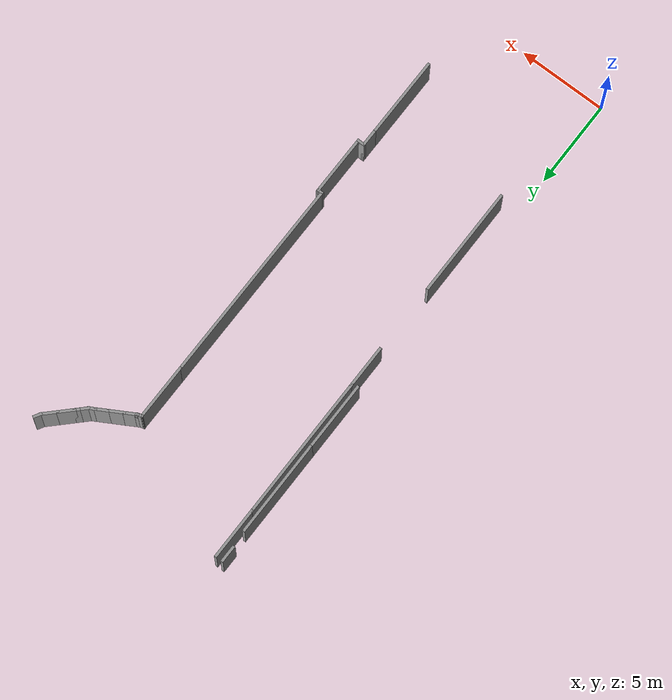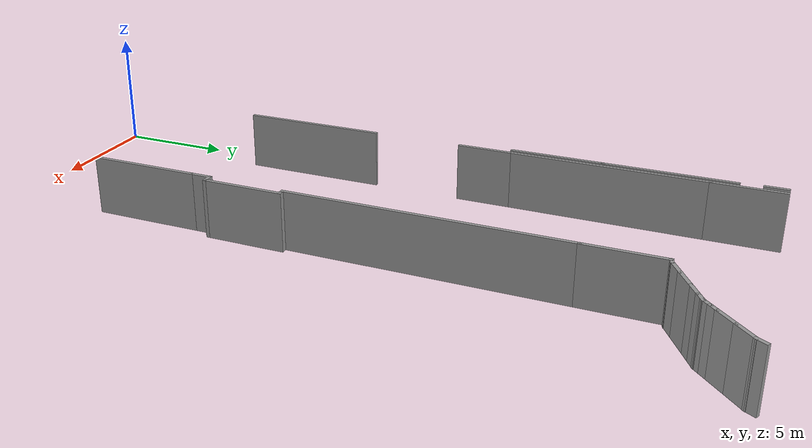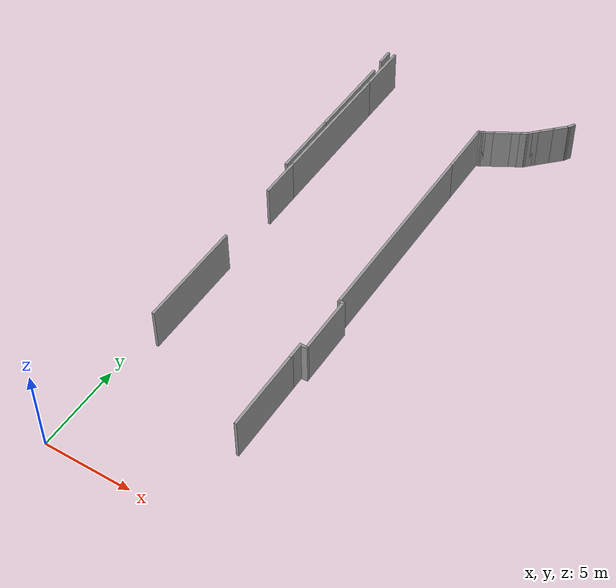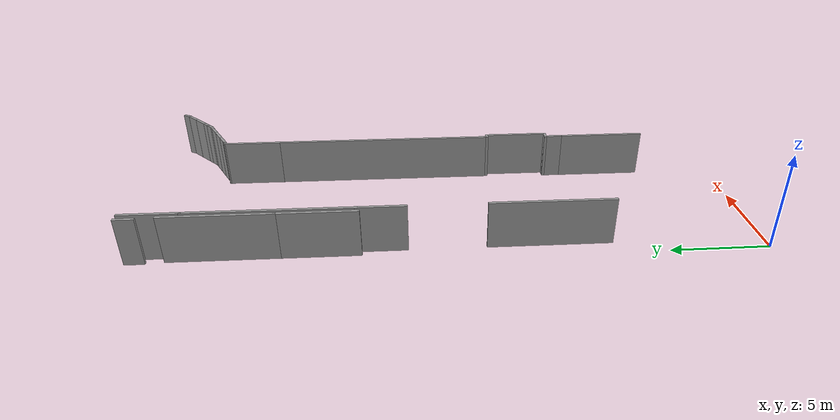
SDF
<sdf version="1.6">
 <model name="volen.world">
  <link name="Wall_101">
   <pose>12.349 30.9499 0 0 0 -2.0944</pose>
   <visual name="Wall_101_Visual">
    <pose>0 0 1.25 0 -0 0</pose>
    <geometry><box><size>0.5 0.15 2.5</size></box></geometry>
    <material>
     <script><uri>file://media/materials/scripts/gazebo.material</uri><name>Gazebo/Grey</name></script>
     <ambient>1 1 1 1</ambient>
     <diffuse>0.7 0.7 0.7 1</diffuse>
     <specular>0.01 0.01 0.01 1</specular>
     <emissive>0 0 0 1</emissive>
    </material>
   </visual>
   <collision name="Wall_101_Collision">
    <pose>0 0 1.25 0 -0 0</pose>
    <geometry><box><size>0.5 0.15 2.5</size></box></geometry>
    <surface>
     <friction>
      <ode><mu>1</mu><mu2>1</mu2><fdir1>0 0 0</fdir1><slip1>0</slip1><slip2>0</slip2></ode>
      <torsional>
       <coefficient>1</coefficient>
       <patch_radius>0</patch_radius>
       <surface_radius>0</surface_radius>
       <use_patch_radius>1</use_patch_radius>
       <ode><slip>0</slip></ode>
      </torsional>
     </friction>
     <bounce><restitution_coefficient>0</restitution_coefficient><threshold>1e+06</threshold></bounce>
     <contact>
      <collide_without_contact>0</collide_without_contact>
      <collide_without_contact_bitmask>1</collide_without_contact_bitmask>
      <collide_bitmask>1</collide_bitmask>
      <ode>
       <soft_cfm>0</soft_cfm>
       <soft_erp>0.2</soft_erp>
       <kp>1e+13</kp>
       <kd>1</kd>
       <max_vel>0.01</max_vel>
       <min_depth>0</min_depth>
      </ode>
      <bullet>
       <split_impulse>1</split_impulse>
       <split_impulse_penetration_threshold>-0.01</split_impulse_penetration_threshold>
       <soft_cfm>0</soft_cfm>
       <soft_erp>0.2</soft_erp>
       <kp>1e+13</kp>
       <kd>1</kd>
      </bullet>
     </contact>
    </surface>
   </collision>
  </link>
  <link name="Wall_102">
   <pose>11.961 30.4978 0 0 0 -2.35619</pose>
   <visual name="Wall_102_Visual">
    <pose>0 0 1.25 0 -0 0</pose>
    <geometry><box><size>1 0.15 2.5</size></box></geometry>
    <material>
     <script><uri>file://media/materials/scripts/gazebo.material</uri><name>Gazebo/Grey</name></script>
     <ambient>1 1 1 1</ambient>
     <diffuse>0.7 0.7 0.7 1</diffuse>
     <specular>0.01 0.01 0.01 1</specular>
     <emissive>0 0 0 1</emissive>
    </material>
   </visual>
   <collision name="Wall_102_Collision">
    <pose>0 0 1.25 0 -0 0</pose>
    <geometry><box><size>1 0.15 2.5</size></box></geometry>
    <surface>
     <friction>
      <ode><mu>1</mu><mu2>1</mu2><fdir1>0 0 0</fdir1><slip1>0</slip1><slip2>0</slip2></ode>
      <torsional>
       <coefficient>1</coefficient>
       <patch_radius>0</patch_radius>
       <surface_radius>0</surface_radius>
       <use_patch_radius>1</use_patch_radius>
       <ode><slip>0</slip></ode>
      </torsional>
     </friction>
     <bounce><restitution_coefficient>0</restitution_coefficient><threshold>1e+06</threshold></bounce>
     <contact>
      <collide_without_contact>0</collide_without_contact>
      <collide_without_contact_bitmask>1</collide_without_contact_bitmask>
      <collide_bitmask>1</collide_bitmask>
      <ode>
       <soft_cfm>0</soft_cfm>
       <soft_erp>0.2</soft_erp>
       <kp>1e+13</kp>
       <kd>1</kd>
       <max_vel>0.01</max_vel>
       <min_depth>0</min_depth>
      </ode>
      <bullet>
       <split_impulse>1</split_impulse>
       <split_impulse_penetration_threshold>-0.01</split_impulse_penetration_threshold>
       <soft_cfm>0</soft_cfm>
       <soft_erp>0.2</soft_erp>
       <kp>1e+13</kp>
       <kd>1</kd>
      </bullet>
     </contact>
    </surface>
   </collision>
  </link>
  <link name="Wall_103">
   <pose>11.36 29.8968 0 0 0 -2.35619</pose>
   <visual name="Wall_103_Visual">
    <pose>0 0 1.25 0 -0 0</pose>
    <geometry><box><size>1 0.15 2.5</size></box></geometry>
    <material>
     <script><uri>file://media/materials/scripts/gazebo.material</uri><name>Gazebo/Grey</name></script>
     <ambient>1 1 1 1</ambient>
     <diffuse>0.7 0.7 0.7 1</diffuse>
     <specular>0.01 0.01 0.01 1</specular>
     <emissive>0 0 0 1</emissive>
    </material>
   </visual>
   <collision name="Wall_103_Collision">
    <pose>0 0 1.25 0 -0 0</pose>
    <geometry><box><size>1 0.15 2.5</size></box></geometry>
    <surface>
     <friction>
      <ode><mu>1</mu><mu2>1</mu2><fdir1>0 0 0</fdir1><slip1>0</slip1><slip2>0</slip2></ode>
      <torsional>
       <coefficient>1</coefficient>
       <patch_radius>0</patch_radius>
       <surface_radius>0</surface_radius>
       <use_patch_radius>1</use_patch_radius>
       <ode><slip>0</slip></ode>
      </torsional>
     </friction>
     <bounce><restitution_coefficient>0</restitution_coefficient><threshold>1e+06</threshold></bounce>
     <contact>
      <collide_without_contact>0</collide_without_contact>
      <collide_without_contact_bitmask>1</collide_without_contact_bitmask>
      <collide_bitmask>1</collide_bitmask>
      <ode>
       <soft_cfm>0</soft_cfm>
       <soft_erp>0.2</soft_erp>
       <kp>1e+13</kp>
       <kd>1</kd>
       <max_vel>0.01</max_vel>
       <min_depth>0</min_depth>
      </ode>
      <bullet>
       <split_impulse>1</split_impulse>
       <split_impulse_penetration_threshold>-0.01</split_impulse_penetration_threshold>
       <soft_cfm>0</soft_cfm>
       <soft_erp>0.2</soft_erp>
       <kp>1e+13</kp>
       <kd>1</kd>
      </bullet>
     </contact>
    </surface>
   </collision>
  </link>
  <link name="Wall_104">
   <pose>10.9357 29.4725 0 0 0 -2.35619</pose>
   <visual name="Wall_104_Visual">
    <pose>0 0 1.25 0 -0 0</pose>
    <geometry><box><size>0.5 0.15 2.5</size></box></geometry>
    <material>
     <script><uri>file://media/materials/scripts/gazebo.material</uri><name>Gazebo/Grey</name></script>
     <ambient>1 1 1 1</ambient>
     <diffuse>0.7 0.7 0.7 1</diffuse>
     <specular>0.01 0.01 0.01 1</specular>
     <emissive>0 0 0 1</emissive>
    </material>
   </visual>
   <collision name="Wall_104_Collision">
    <pose>0 0 1.25 0 -0 0</pose>
    <geometry><box><size>0.5 0.15 2.5</size></box></geometry>
    <surface>
     <friction>
      <ode><mu>1</mu><mu2>1</mu2><fdir1>0 0 0</fdir1><slip1>0</slip1><slip2>0</slip2></ode>
      <torsional>
       <coefficient>1</coefficient>
       <patch_radius>0</patch_radius>
       <surface_radius>0</surface_radius>
       <use_patch_radius>1</use_patch_radius>
       <ode><slip>0</slip></ode>
      </torsional>
     </friction>
     <bounce><restitution_coefficient>0</restitution_coefficient><threshold>1e+06</threshold></bounce>
     <contact>
      <collide_without_contact>0</collide_without_contact>
      <collide_without_contact_bitmask>1</collide_without_contact_bitmask>
      <collide_bitmask>1</collide_bitmask>
      <ode>
       <soft_cfm>0</soft_cfm>
       <soft_erp>0.2</soft_erp>
       <kp>1e+13</kp>
       <kd>1</kd>
       <max_vel>0.01</max_vel>
       <min_depth>0</min_depth>
      </ode>
      <bullet>
       <split_impulse>1</split_impulse>
       <split_impulse_penetration_threshold>-0.01</split_impulse_penetration_threshold>
       <soft_cfm>0</soft_cfm>
       <soft_erp>0.2</soft_erp>
       <kp>1e+13</kp>
       <kd>1</kd>
      </bullet>
     </contact>
    </surface>
   </collision>
  </link>
  <link name="Wall_105">
   <pose>10.6882 29.225 0 0 0 -2.35619</pose>
   <visual name="Wall_105_Visual">
    <pose>0 0 1.25 0 -0 0</pose>
    <geometry><box><size>0.5 0.15 2.5</size></box></geometry>
    <material>
     <script><uri>file://media/materials/scripts/gazebo.material</uri><name>Gazebo/Grey</name></script>
     <ambient>1 1 1 1</ambient>
     <diffuse>0.7 0.7 0.7 1</diffuse>
     <specular>0.01 0.01 0.01 1</specular>
     <emissive>0 0 0 1</emissive>
    </material>
   </visual>
   <collision name="Wall_105_Collision">
    <pose>0 0 1.25 0 -0 0</pose>
    <geometry><box><size>0.5 0.15 2.5</size></box></geometry>
    <surface>
     <friction>
      <ode><mu>1</mu><mu2>1</mu2><fdir1>0 0 0</fdir1><slip1>0</slip1><slip2>0</slip2></ode>
      <torsional>
       <coefficient>1</coefficient>
       <patch_radius>0</patch_radius>
       <surface_radius>0</surface_radius>
       <use_patch_radius>1</use_patch_radius>
       <ode><slip>0</slip></ode>
      </torsional>
     </friction>
     <bounce><restitution_coefficient>0</restitution_coefficient><threshold>1e+06</threshold></bounce>
     <contact>
      <collide_without_contact>0</collide_without_contact>
      <collide_without_contact_bitmask>1</collide_without_contact_bitmask>
      <collide_bitmask>1</collide_bitmask>
      <ode>
       <soft_cfm>0</soft_cfm>
       <soft_erp>0.2</soft_erp>
       <kp>1e+13</kp>
       <kd>1</kd>
       <max_vel>0.01</max_vel>
       <min_depth>0</min_depth>
      </ode>
      <bullet>
       <split_impulse>1</split_impulse>
       <split_impulse_penetration_threshold>-0.01</split_impulse_penetration_threshold>
       <soft_cfm>0</soft_cfm>
       <soft_erp>0.2</soft_erp>
       <kp>1e+13</kp>
       <kd>1</kd>
      </bullet>
     </contact>
    </surface>
   </collision>
  </link>
  <link name="Wall_106">
   <pose>10.4129 29.0138 0 0 0 -2.61799</pose>
   <visual name="Wall_106_Visual">
    <pose>0 0 1.25 0 -0 0</pose>
    <geometry><box><size>0.5 0.15 2.5</size></box></geometry>
    <material>
     <script><uri>file://media/materials/scripts/gazebo.material</uri><name>Gazebo/Grey</name></script>
     <ambient>1 1 1 1</ambient>
     <diffuse>0.7 0.7 0.7 1</diffuse>
     <specular>0.01 0.01 0.01 1</specular>
     <emissive>0 0 0 1</emissive>
    </material>
   </visual>
   <collision name="Wall_106_Collision">
    <pose>0 0 1.25 0 -0 0</pose>
    <geometry><box><size>0.5 0.15 2.5</size></box></geometry>
    <surface>
     <friction>
      <ode><mu>1</mu><mu2>1</mu2><fdir1>0 0 0</fdir1><slip1>0</slip1><slip2>0</slip2></ode>
      <torsional>
       <coefficient>1</coefficient>
       <patch_radius>0</patch_radius>
       <surface_radius>0</surface_radius>
       <use_patch_radius>1</use_patch_radius>
       <ode><slip>0</slip></ode>
      </torsional>
     </friction>
     <bounce><restitution_coefficient>0</restitution_coefficient><threshold>1e+06</threshold></bounce>
     <contact>
      <collide_without_contact>0</collide_without_contact>
      <collide_without_contact_bitmask>1</collide_without_contact_bitmask>
      <collide_bitmask>1</collide_bitmask>
      <ode>
       <soft_cfm>0</soft_cfm>
       <soft_erp>0.2</soft_erp>
       <kp>1e+13</kp>
       <kd>1</kd>
       <max_vel>0.01</max_vel>
       <min_depth>0</min_depth>
      </ode>
      <bullet>
       <split_impulse>1</split_impulse>
       <split_impulse_penetration_threshold>-0.01</split_impulse_penetration_threshold>
       <soft_cfm>0</soft_cfm>
       <soft_erp>0.2</soft_erp>
       <kp>1e+13</kp>
       <kd>1</kd>
      </bullet>
     </contact>
    </surface>
   </collision>
  </link>
  <link name="Wall_108">
   <pose>10.0015 28.7763 0 0 0 -2.61799</pose>
   <visual name="Wall_108_Visual">
    <pose>0 0 1.25 0 -0 0</pose>
    <geometry><box><size>0.75 0.15 2.5</size></box></geometry>
    <material>
     <script><uri>file://media/materials/scripts/gazebo.material</uri><name>Gazebo/Grey</name></script>
     <ambient>1 1 1 1</ambient>
     <diffuse>0.7 0.7 0.7 1</diffuse>
     <specular>0.01 0.01 0.01 1</specular>
     <emissive>0 0 0 1</emissive>
    </material>
   </visual>
   <collision name="Wall_108_Collision">
    <pose>0 0 1.25 0 -0 0</pose>
    <geometry><box><size>0.75 0.15 2.5</size></box></geometry>
    <surface>
     <friction>
      <ode><mu>1</mu><mu2>1</mu2><fdir1>0 0 0</fdir1><slip1>0</slip1><slip2>0</slip2></ode>
      <torsional>
       <coefficient>1</coefficient>
       <patch_radius>0</patch_radius>
       <surface_radius>0</surface_radius>
       <use_patch_radius>1</use_patch_radius>
       <ode><slip>0</slip></ode>
      </torsional>
     </friction>
     <bounce><restitution_coefficient>0</restitution_coefficient><threshold>1e+06</threshold></bounce>
     <contact>
      <collide_without_contact>0</collide_without_contact>
      <collide_without_contact_bitmask>1</collide_without_contact_bitmask>
      <collide_bitmask>1</collide_bitmask>
      <ode>
       <soft_cfm>0</soft_cfm>
       <soft_erp>0.2</soft_erp>
       <kp>1e+13</kp>
       <kd>1</kd>
       <max_vel>0.01</max_vel>
       <min_depth>0</min_depth>
      </ode>
      <bullet>
       <split_impulse>1</split_impulse>
       <split_impulse_penetration_threshold>-0.01</split_impulse_penetration_threshold>
       <soft_cfm>0</soft_cfm>
       <soft_erp>0.2</soft_erp>
       <kp>1e+13</kp>
       <kd>1</kd>
      </bullet>
     </contact>
    </surface>
   </collision>
  </link>
  <link name="Wall_109">
   <pose>9.37367 28.4138 0 0 0 -2.61799</pose>
   <visual name="Wall_109_Visual">
    <pose>0 0 1.25 0 -0 0</pose>
    <geometry><box><size>1 0.15 2.5</size></box></geometry>
    <material>
     <script><uri>file://media/materials/scripts/gazebo.material</uri><name>Gazebo/Grey</name></script>
     <ambient>1 1 1 1</ambient>
     <diffuse>0.7 0.7 0.7 1</diffuse>
     <specular>0.01 0.01 0.01 1</specular>
     <emissive>0 0 0 1</emissive>
    </material>
   </visual>
   <collision name="Wall_109_Collision">
    <pose>0 0 1.25 0 -0 0</pose>
    <geometry><box><size>1 0.15 2.5</size></box></geometry>
    <surface>
     <friction>
      <ode><mu>1</mu><mu2>1</mu2><fdir1>0 0 0</fdir1><slip1>0</slip1><slip2>0</slip2></ode>
      <torsional>
       <coefficient>1</coefficient>
       <patch_radius>0</patch_radius>
       <surface_radius>0</surface_radius>
       <use_patch_radius>1</use_patch_radius>
       <ode><slip>0</slip></ode>
      </torsional>
     </friction>
     <bounce><restitution_coefficient>0</restitution_coefficient><threshold>1e+06</threshold></bounce>
     <contact>
      <collide_without_contact>0</collide_without_contact>
      <collide_without_contact_bitmask>1</collide_without_contact_bitmask>
      <collide_bitmask>1</collide_bitmask>
      <ode>
       <soft_cfm>0</soft_cfm>
       <soft_erp>0.2</soft_erp>
       <kp>1e+13</kp>
       <kd>1</kd>
       <max_vel>0.01</max_vel>
       <min_depth>0</min_depth>
      </ode>
      <bullet>
       <split_impulse>1</split_impulse>
       <split_impulse_penetration_threshold>-0.01</split_impulse_penetration_threshold>
       <soft_cfm>0</soft_cfm>
       <soft_erp>0.2</soft_erp>
       <kp>1e+13</kp>
       <kd>1</kd>
      </bullet>
     </contact>
    </surface>
   </collision>
  </link>
  <link name="Wall_110">
   <pose>8.7458 28.0513 0 0 0 -2.61799</pose>
   <visual name="Wall_110_Visual">
    <pose>0 0 1.25 0 -0 0</pose>
    <geometry><box><size>0.75 0.15 2.5</size></box></geometry>
    <material>
     <script><uri>file://media/materials/scripts/gazebo.material</uri><name>Gazebo/Grey</name></script>
     <ambient>1 1 1 1</ambient>
     <diffuse>0.7 0.7 0.7 1</diffuse>
     <specular>0.01 0.01 0.01 1</specular>
     <emissive>0 0 0 1</emissive>
    </material>
   </visual>
   <collision name="Wall_110_Collision">
    <pose>0 0 1.25 0 -0 0</pose>
    <geometry><box><size>0.75 0.15 2.5</size></box></geometry>
    <surface>
     <friction>
      <ode><mu>1</mu><mu2>1</mu2><fdir1>0 0 0</fdir1><slip1>0</slip1><slip2>0</slip2></ode>
      <torsional>
       <coefficient>1</coefficient>
       <patch_radius>0</patch_radius>
       <surface_radius>0</surface_radius>
       <use_patch_radius>1</use_patch_radius>
       <ode><slip>0</slip></ode>
      </torsional>
     </friction>
     <bounce><restitution_coefficient>0</restitution_coefficient><threshold>1e+06</threshold></bounce>
     <contact>
      <collide_without_contact>0</collide_without_contact>
      <collide_without_contact_bitmask>1</collide_without_contact_bitmask>
      <collide_bitmask>1</collide_bitmask>
      <ode>
       <soft_cfm>0</soft_cfm>
       <soft_erp>0.2</soft_erp>
       <kp>1e+13</kp>
       <kd>1</kd>
       <max_vel>0.01</max_vel>
       <min_depth>0</min_depth>
      </ode>
      <bullet>
       <split_impulse>1</split_impulse>
       <split_impulse_penetration_threshold>-0.01</split_impulse_penetration_threshold>
       <soft_cfm>0</soft_cfm>
       <soft_erp>0.2</soft_erp>
       <kp>1e+13</kp>
       <kd>1</kd>
      </bullet>
     </contact>
    </surface>
   </collision>
  </link>
  <link name="Wall_111">
   <pose>8.44269 27.8763 0 0 0 -2.61799</pose>
   <visual name="Wall_111_Visual">
    <pose>0 0 1.25 0 -0 0</pose>
    <geometry><box><size>0.25 0.15 2.5</size></box></geometry>
    <material>
     <script><uri>file://media/materials/scripts/gazebo.material</uri><name>Gazebo/Grey</name></script>
     <ambient>1 1 1 1</ambient>
     <diffuse>0.7 0.7 0.7 1</diffuse>
     <specular>0.01 0.01 0.01 1</specular>
     <emissive>0 0 0 1</emissive>
    </material>
   </visual>
   <collision name="Wall_111_Collision">
    <pose>0 0 1.25 0 -0 0</pose>
    <geometry><box><size>0.25 0.15 2.5</size></box></geometry>
    <surface>
     <friction>
      <ode><mu>1</mu><mu2>1</mu2><fdir1>0 0 0</fdir1><slip1>0</slip1><slip2>0</slip2></ode>
      <torsional>
       <coefficient>1</coefficient>
       <patch_radius>0</patch_radius>
       <surface_radius>0</surface_radius>
       <use_patch_radius>1</use_patch_radius>
       <ode><slip>0</slip></ode>
      </torsional>
     </friction>
     <bounce><restitution_coefficient>0</restitution_coefficient><threshold>1e+06</threshold></bounce>
     <contact>
      <collide_without_contact>0</collide_without_contact>
      <collide_without_contact_bitmask>1</collide_without_contact_bitmask>
      <collide_bitmask>1</collide_bitmask>
      <ode>
       <soft_cfm>0</soft_cfm>
       <soft_erp>0.2</soft_erp>
       <kp>1e+13</kp>
       <kd>1</kd>
       <max_vel>0.01</max_vel>
       <min_depth>0</min_depth>
      </ode>
      <bullet>
       <split_impulse>1</split_impulse>
       <split_impulse_penetration_threshold>-0.01</split_impulse_penetration_threshold>
       <soft_cfm>0</soft_cfm>
       <soft_erp>0.2</soft_erp>
       <kp>1e+13</kp>
       <kd>1</kd>
      </bullet>
     </contact>
    </surface>
   </collision>
  </link>
  <link name="Wall_112">
   <pose>8.3511 27.8383 0 0 0 -2.87979</pose>
   <visual name="Wall_112_Visual">
    <pose>0 0 1.25 0 -0 0</pose>
    <geometry><box><size>0.25 0.15 2.5</size></box></geometry>
    <material>
     <script><uri>file://media/materials/scripts/gazebo.material</uri><name>Gazebo/Grey</name></script>
     <ambient>1 1 1 1</ambient>
     <diffuse>0.7 0.7 0.7 1</diffuse>
     <specular>0.01 0.01 0.01 1</specular>
     <emissive>0 0 0 1</emissive>
    </material>
   </visual>
   <collision name="Wall_112_Collision">
    <pose>0 0 1.25 0 -0 0</pose>
    <geometry><box><size>0.25 0.15 2.5</size></box></geometry>
    <surface>
     <friction>
      <ode><mu>1</mu><mu2>1</mu2><fdir1>0 0 0</fdir1><slip1>0</slip1><slip2>0</slip2></ode>
      <torsional>
       <coefficient>1</coefficient>
       <patch_radius>0</patch_radius>
       <surface_radius>0</surface_radius>
       <use_patch_radius>1</use_patch_radius>
       <ode><slip>0</slip></ode>
      </torsional>
     </friction>
     <bounce><restitution_coefficient>0</restitution_coefficient><threshold>1e+06</threshold></bounce>
     <contact>
      <collide_without_contact>0</collide_without_contact>
      <collide_without_contact_bitmask>1</collide_without_contact_bitmask>
      <collide_bitmask>1</collide_bitmask>
      <ode>
       <soft_cfm>0</soft_cfm>
       <soft_erp>0.2</soft_erp>
       <kp>1e+13</kp>
       <kd>1</kd>
       <max_vel>0.01</max_vel>
       <min_depth>0</min_depth>
      </ode>
      <bullet>
       <split_impulse>1</split_impulse>
       <split_impulse_penetration_threshold>-0.01</split_impulse_penetration_threshold>
       <soft_cfm>0</soft_cfm>
       <soft_erp>0.2</soft_erp>
       <kp>1e+13</kp>
       <kd>1</kd>
      </bullet>
     </contact>
    </surface>
   </collision>
  </link>
  <link name="Wall_113">
   <pose>8.2545 27.8124 0 0 0 -2.87979</pose>
   <visual name="Wall_113_Visual">
    <pose>0 0 1.25 0 -0 0</pose>
    <geometry><box><size>0.25 0.15 2.5</size></box></geometry>
    <material>
     <script><uri>file://media/materials/scripts/gazebo.material</uri><name>Gazebo/Grey</name></script>
     <ambient>1 1 1 1</ambient>
     <diffuse>0.7 0.7 0.7 1</diffuse>
     <specular>0.01 0.01 0.01 1</specular>
     <emissive>0 0 0 1</emissive>
    </material>
   </visual>
   <collision name="Wall_113_Collision">
    <pose>0 0 1.25 0 -0 0</pose>
    <geometry><box><size>0.25 0.15 2.5</size></box></geometry>
    <surface>
     <friction>
      <ode><mu>1</mu><mu2>1</mu2><fdir1>0 0 0</fdir1><slip1>0</slip1><slip2>0</slip2></ode>
      <torsional>
       <coefficient>1</coefficient>
       <patch_radius>0</patch_radius>
       <surface_radius>0</surface_radius>
       <use_patch_radius>1</use_patch_radius>
       <ode><slip>0</slip></ode>
      </torsional>
     </friction>
     <bounce><restitution_coefficient>0</restitution_coefficient><threshold>1e+06</threshold></bounce>
     <contact>
      <collide_without_contact>0</collide_without_contact>
      <collide_without_contact_bitmask>1</collide_without_contact_bitmask>
      <collide_bitmask>1</collide_bitmask>
      <ode>
       <soft_cfm>0</soft_cfm>
       <soft_erp>0.2</soft_erp>
       <kp>1e+13</kp>
       <kd>1</kd>
       <max_vel>0.01</max_vel>
       <min_depth>0</min_depth>
      </ode>
      <bullet>
       <split_impulse>1</split_impulse>
       <split_impulse_penetration_threshold>-0.01</split_impulse_penetration_threshold>
       <soft_cfm>0</soft_cfm>
       <soft_erp>0.2</soft_erp>
       <kp>1e+13</kp>
       <kd>1</kd>
      </bullet>
     </contact>
    </surface>
   </collision>
  </link>
  <link name="Wall_114">
   <pose>8.20621 26.2495 0 0 0 -1.5708</pose>
   <visual name="Wall_114_Visual">
    <pose>0 0 1.25 0 -0 0</pose>
    <geometry><box><size>3.25 0.15 2.5</size></box></geometry>
    <material>
     <script><uri>file://media/materials/scripts/gazebo.material</uri><name>Gazebo/Grey</name></script>
     <ambient>1 1 1 1</ambient>
     <diffuse>0.7 0.7 0.7 1</diffuse>
     <specular>0.01 0.01 0.01 1</specular>
     <emissive>0 0 0 1</emissive>
    </material>
   </visual>
   <collision name="Wall_114_Collision">
    <pose>0 0 1.25 0 -0 0</pose>
    <geometry><box><size>3.25 0.15 2.5</size></box></geometry>
    <surface>
     <friction>
      <ode><mu>1</mu><mu2>1</mu2><fdir1>0 0 0</fdir1><slip1>0</slip1><slip2>0</slip2></ode>
      <torsional>
       <coefficient>1</coefficient>
       <patch_radius>0</patch_radius>
       <surface_radius>0</surface_radius>
       <use_patch_radius>1</use_patch_radius>
       <ode><slip>0</slip></ode>
      </torsional>
     </friction>
     <bounce><restitution_coefficient>0</restitution_coefficient><threshold>1e+06</threshold></bounce>
     <contact>
      <collide_without_contact>0</collide_without_contact>
      <collide_without_contact_bitmask>1</collide_without_contact_bitmask>
      <collide_bitmask>1</collide_bitmask>
      <ode>
       <soft_cfm>0</soft_cfm>
       <soft_erp>0.2</soft_erp>
       <kp>1e+13</kp>
       <kd>1</kd>
       <max_vel>0.01</max_vel>
       <min_depth>0</min_depth>
      </ode>
      <bullet>
       <split_impulse>1</split_impulse>
       <split_impulse_penetration_threshold>-0.01</split_impulse_penetration_threshold>
       <soft_cfm>0</soft_cfm>
       <soft_erp>0.2</soft_erp>
       <kp>1e+13</kp>
       <kd>1</kd>
      </bullet>
     </contact>
    </surface>
   </collision>
  </link>
  <link name="Wall_116">
   <pose>8.20622 18.8994 0 0 0 -1.57079</pose>
   <visual name="Wall_116_Visual">
    <pose>0 0 1.25 0 -0 0</pose>
    <geometry><box><size>11.75 0.15 2.5</size></box></geometry>
    <material>
     <script><uri>file://media/materials/scripts/gazebo.material</uri><name>Gazebo/Grey</name></script>
     <ambient>1 1 1 1</ambient>
     <diffuse>0.7 0.7 0.7 1</diffuse>
     <specular>0.01 0.01 0.01 1</specular>
     <emissive>0 0 0 1</emissive>
    </material>
   </visual>
   <collision name="Wall_116_Collision">
    <pose>0 0 1.25 0 -0 0</pose>
    <geometry><box><size>11.75 0.15 2.5</size></box></geometry>
    <surface>
     <friction>
      <ode><mu>1</mu><mu2>1</mu2><fdir1>0 0 0</fdir1><slip1>0</slip1><slip2>0</slip2></ode>
      <torsional>
       <coefficient>1</coefficient>
       <patch_radius>0</patch_radius>
       <surface_radius>0</surface_radius>
       <use_patch_radius>1</use_patch_radius>
       <ode><slip>0</slip></ode>
      </torsional>
     </friction>
     <bounce><restitution_coefficient>0</restitution_coefficient><threshold>1e+06</threshold></bounce>
     <contact>
      <collide_without_contact>0</collide_without_contact>
      <collide_without_contact_bitmask>1</collide_without_contact_bitmask>
      <collide_bitmask>1</collide_bitmask>
      <ode>
       <soft_cfm>0</soft_cfm>
       <soft_erp>0.2</soft_erp>
       <kp>1e+13</kp>
       <kd>1</kd>
       <max_vel>0.01</max_vel>
       <min_depth>0</min_depth>
      </ode>
      <bullet>
       <split_impulse>1</split_impulse>
       <split_impulse_penetration_threshold>-0.01</split_impulse_penetration_threshold>
       <soft_cfm>0</soft_cfm>
       <soft_erp>0.2</soft_erp>
       <kp>1e+13</kp>
       <kd>1</kd>
      </bullet>
     </contact>
    </surface>
   </collision>
  </link>
  <link name="Wall_118">
   <pose>8.32123 13.0994 0 0 -0 0</pose>
   <visual name="Wall_118_Visual">
    <pose>0 0 1.25 0 -0 0</pose>
    <geometry><box><size>0.38 0.15 2.5</size></box></geometry>
    <material>
     <script><uri>file://media/materials/scripts/gazebo.material</uri><name>Gazebo/Grey</name></script>
     <ambient>1 1 1 1</ambient>
     <diffuse>0.7 0.7 0.7 1</diffuse>
     <specular>0.01 0.01 0.01 1</specular>
     <emissive>0 0 0 1</emissive>
    </material>
   </visual>
   <collision name="Wall_118_Collision">
    <pose>0 0 1.25 0 -0 0</pose>
    <geometry><box><size>0.38 0.15 2.5</size></box></geometry>
    <surface>
     <friction>
      <ode><mu>1</mu><mu2>1</mu2><fdir1>0 0 0</fdir1><slip1>0</slip1><slip2>0</slip2></ode>
      <torsional>
       <coefficient>1</coefficient>
       <patch_radius>0</patch_radius>
       <surface_radius>0</surface_radius>
       <use_patch_radius>1</use_patch_radius>
       <ode><slip>0</slip></ode>
      </torsional>
     </friction>
     <bounce><restitution_coefficient>0</restitution_coefficient><threshold>1e+06</threshold></bounce>
     <contact>
      <collide_without_contact>0</collide_without_contact>
      <collide_without_contact_bitmask>1</collide_without_contact_bitmask>
      <collide_bitmask>1</collide_bitmask>
      <ode>
       <soft_cfm>0</soft_cfm>
       <soft_erp>0.2</soft_erp>
       <kp>1e+13</kp>
       <kd>1</kd>
       <max_vel>0.01</max_vel>
       <min_depth>0</min_depth>
      </ode>
      <bullet>
       <split_impulse>1</split_impulse>
       <split_impulse_penetration_threshold>-0.01</split_impulse_penetration_threshold>
       <soft_cfm>0</soft_cfm>
       <soft_erp>0.2</soft_erp>
       <kp>1e+13</kp>
       <kd>1</kd>
      </bullet>
     </contact>
    </surface>
   </collision>
  </link>
  <link name="Wall_121">
   <pose>8.43623 11.4244 0 0 0 -1.5708</pose>
   <visual name="Wall_121_Visual">
    <pose>0 0 1.25 0 -0 0</pose>
    <geometry><box><size>3.5 0.15 2.5</size></box></geometry>
    <material>
     <script><uri>file://media/materials/scripts/gazebo.material</uri><name>Gazebo/Grey</name></script>
     <ambient>1 1 1 1</ambient>
     <diffuse>0.7 0.7 0.7 1</diffuse>
     <specular>0.01 0.01 0.01 1</specular>
     <emissive>0 0 0 1</emissive>
    </material>
   </visual>
   <collision name="Wall_121_Collision">
    <pose>0 0 1.25 0 -0 0</pose>
    <geometry><box><size>3.5 0.15 2.5</size></box></geometry>
    <surface>
     <friction>
      <ode><mu>1</mu><mu2>1</mu2><fdir1>0 0 0</fdir1><slip1>0</slip1><slip2>0</slip2></ode>
      <torsional>
       <coefficient>1</coefficient>
       <patch_radius>0</patch_radius>
       <surface_radius>0</surface_radius>
       <use_patch_radius>1</use_patch_radius>
       <ode><slip>0</slip></ode>
      </torsional>
     </friction>
     <bounce><restitution_coefficient>0</restitution_coefficient><threshold>1e+06</threshold></bounce>
     <contact>
      <collide_without_contact>0</collide_without_contact>
      <collide_without_contact_bitmask>1</collide_without_contact_bitmask>
      <collide_bitmask>1</collide_bitmask>
      <ode>
       <soft_cfm>0</soft_cfm>
       <soft_erp>0.2</soft_erp>
       <kp>1e+13</kp>
       <kd>1</kd>
       <max_vel>0.01</max_vel>
       <min_depth>0</min_depth>
      </ode>
      <bullet>
       <split_impulse>1</split_impulse>
       <split_impulse_penetration_threshold>-0.01</split_impulse_penetration_threshold>
       <soft_cfm>0</soft_cfm>
       <soft_erp>0.2</soft_erp>
       <kp>1e+13</kp>
       <kd>1</kd>
      </bullet>
     </contact>
    </surface>
   </collision>
  </link>
  <link name="Wall_122">
   <pose>8.26123 9.74936 0 0 -0 3.14159</pose>
   <visual name="Wall_122_Visual">
    <pose>0 0 1.25 0 -0 0</pose>
    <geometry><box><size>0.5 0.15 2.5</size></box></geometry>
    <material>
     <script><uri>file://media/materials/scripts/gazebo.material</uri><name>Gazebo/Grey</name></script>
     <ambient>1 1 1 1</ambient>
     <diffuse>0.7 0.7 0.7 1</diffuse>
     <specular>0.01 0.01 0.01 1</specular>
     <emissive>0 0 0 1</emissive>
    </material>
   </visual>
   <collision name="Wall_122_Collision">
    <pose>0 0 1.25 0 -0 0</pose>
    <geometry><box><size>0.5 0.15 2.5</size></box></geometry>
    <surface>
     <friction>
      <ode><mu>1</mu><mu2>1</mu2><fdir1>0 0 0</fdir1><slip1>0</slip1><slip2>0</slip2></ode>
      <torsional>
       <coefficient>1</coefficient>
       <patch_radius>0</patch_radius>
       <surface_radius>0</surface_radius>
       <use_patch_radius>1</use_patch_radius>
       <ode><slip>0</slip></ode>
      </torsional>
     </friction>
     <bounce><restitution_coefficient>0</restitution_coefficient><threshold>1e+06</threshold></bounce>
     <contact>
      <collide_without_contact>0</collide_without_contact>
      <collide_without_contact_bitmask>1</collide_without_contact_bitmask>
      <collide_bitmask>1</collide_bitmask>
      <ode>
       <soft_cfm>0</soft_cfm>
       <soft_erp>0.2</soft_erp>
       <kp>1e+13</kp>
       <kd>1</kd>
       <max_vel>0.01</max_vel>
       <min_depth>0</min_depth>
      </ode>
      <bullet>
       <split_impulse>1</split_impulse>
       <split_impulse_penetration_threshold>-0.01</split_impulse_penetration_threshold>
       <soft_cfm>0</soft_cfm>
       <soft_erp>0.2</soft_erp>
       <kp>1e+13</kp>
       <kd>1</kd>
      </bullet>
     </contact>
    </surface>
   </collision>
  </link>
  <link name="Wall_123">
   <pose>8.08623 9.32436 0 0 0 -1.5708</pose>
   <visual name="Wall_123_Visual">
    <pose>0 0 1.25 0 -0 0</pose>
    <geometry><box><size>1 0.15 2.5</size></box></geometry>
    <material>
     <script><uri>file://media/materials/scripts/gazebo.material</uri><name>Gazebo/Grey</name></script>
     <ambient>1 1 1 1</ambient>
     <diffuse>0.7 0.7 0.7 1</diffuse>
     <specular>0.01 0.01 0.01 1</specular>
     <emissive>0 0 0 1</emissive>
    </material>
   </visual>
   <collision name="Wall_123_Collision">
    <pose>0 0 1.25 0 -0 0</pose>
    <geometry><box><size>1 0.15 2.5</size></box></geometry>
    <surface>
     <friction>
      <ode><mu>1</mu><mu2>1</mu2><fdir1>0 0 0</fdir1><slip1>0</slip1><slip2>0</slip2></ode>
      <torsional>
       <coefficient>1</coefficient>
       <patch_radius>0</patch_radius>
       <surface_radius>0</surface_radius>
       <use_patch_radius>1</use_patch_radius>
       <ode><slip>0</slip></ode>
      </torsional>
     </friction>
     <bounce><restitution_coefficient>0</restitution_coefficient><threshold>1e+06</threshold></bounce>
     <contact>
      <collide_without_contact>0</collide_without_contact>
      <collide_without_contact_bitmask>1</collide_without_contact_bitmask>
      <collide_bitmask>1</collide_bitmask>
      <ode>
       <soft_cfm>0</soft_cfm>
       <soft_erp>0.2</soft_erp>
       <kp>1e+13</kp>
       <kd>1</kd>
       <max_vel>0.01</max_vel>
       <min_depth>0</min_depth>
      </ode>
      <bullet>
       <split_impulse>1</split_impulse>
       <split_impulse_penetration_threshold>-0.01</split_impulse_penetration_threshold>
       <soft_cfm>0</soft_cfm>
       <soft_erp>0.2</soft_erp>
       <kp>1e+13</kp>
       <kd>1</kd>
      </bullet>
     </contact>
    </surface>
   </collision>
  </link>
  <link name="Wall_125">
   <pose>8.08623 6.59936 0 0 0 -1.5708</pose>
   <visual name="Wall_125_Visual">
    <pose>0 0 1.25 0 -0 0</pose>
    <geometry><box><size>4.75 0.15 2.5</size></box></geometry>
    <material>
     <script><uri>file://media/materials/scripts/gazebo.material</uri><name>Gazebo/Grey</name></script>
     <ambient>1 1 1 1</ambient>
     <diffuse>0.7 0.7 0.7 1</diffuse>
     <specular>0.01 0.01 0.01 1</specular>
     <emissive>0 0 0 1</emissive>
    </material>
   </visual>
   <collision name="Wall_125_Collision">
    <pose>0 0 1.25 0 -0 0</pose>
    <geometry><box><size>4.75 0.15 2.5</size></box></geometry>
    <surface>
     <friction>
      <ode><mu>1</mu><mu2>1</mu2><fdir1>0 0 0</fdir1><slip1>0</slip1><slip2>0</slip2></ode>
      <torsional>
       <coefficient>1</coefficient>
       <patch_radius>0</patch_radius>
       <surface_radius>0</surface_radius>
       <use_patch_radius>1</use_patch_radius>
       <ode><slip>0</slip></ode>
      </torsional>
     </friction>
     <bounce><restitution_coefficient>0</restitution_coefficient><threshold>1e+06</threshold></bounce>
     <contact>
      <collide_without_contact>0</collide_without_contact>
      <collide_without_contact_bitmask>1</collide_without_contact_bitmask>
      <collide_bitmask>1</collide_bitmask>
      <ode>
       <soft_cfm>0</soft_cfm>
       <soft_erp>0.2</soft_erp>
       <kp>1e+13</kp>
       <kd>1</kd>
       <max_vel>0.01</max_vel>
       <min_depth>0</min_depth>
      </ode>
      <bullet>
       <split_impulse>1</split_impulse>
       <split_impulse_penetration_threshold>-0.01</split_impulse_penetration_threshold>
       <soft_cfm>0</soft_cfm>
       <soft_erp>0.2</soft_erp>
       <kp>1e+13</kp>
       <kd>1</kd>
      </bullet>
     </contact>
    </surface>
   </collision>
  </link>
  <link name="Wall_273">
   <pose>0.89523 10.7454 0 0 -0 1.5708</pose>
   <visual name="Wall_273_Visual">
    <pose>0 0 1.25 0 -0 0</pose>
    <geometry><box><size>6.28 0.15 2.5</size></box></geometry>
    <material>
     <script><uri>file://media/materials/scripts/gazebo.material</uri><name>Gazebo/Grey</name></script>
     <ambient>1 1 1 1</ambient>
     <diffuse>0.7 0.7 0.7 1</diffuse>
     <specular>0.01 0.01 0.01 1</specular>
     <emissive>0 0 0 1</emissive>
    </material>
   </visual>
   <collision name="Wall_273_Collision">
    <pose>0 0 1.25 0 -0 0</pose>
    <geometry><box><size>6.28 0.15 2.5</size></box></geometry>
    <surface>
     <friction>
      <ode><mu>1</mu><mu2>1</mu2><fdir1>0 0 0</fdir1><slip1>0</slip1><slip2>0</slip2></ode>
      <torsional>
       <coefficient>1</coefficient>
       <patch_radius>0</patch_radius>
       <surface_radius>0</surface_radius>
       <use_patch_radius>1</use_patch_radius>
       <ode><slip>0</slip></ode>
      </torsional>
     </friction>
     <bounce><restitution_coefficient>0</restitution_coefficient><threshold>1e+06</threshold></bounce>
     <contact>
      <collide_without_contact>0</collide_without_contact>
      <collide_without_contact_bitmask>1</collide_without_contact_bitmask>
      <collide_bitmask>1</collide_bitmask>
      <ode>
       <soft_cfm>0</soft_cfm>
       <soft_erp>0.2</soft_erp>
       <kp>1e+13</kp>
       <kd>1</kd>
       <max_vel>0.01</max_vel>
       <min_depth>0</min_depth>
      </ode>
      <bullet>
       <split_impulse>1</split_impulse>
       <split_impulse_penetration_threshold>-0.01</split_impulse_penetration_threshold>
       <soft_cfm>0</soft_cfm>
       <soft_erp>0.2</soft_erp>
       <kp>1e+13</kp>
       <kd>1</kd>
      </bullet>
     </contact>
    </surface>
   </collision>
  </link>
  <link name="Wall_298">
   <pose>0.89523 18.9784 0 0 -0 1.5708</pose>
   <visual name="Wall_298_Visual">
    <pose>0 0 1.25 0 -0 0</pose>
    <geometry><box><size>2.5 0.15 2.5</size></box></geometry>
    <material>
     <script><uri>file://media/materials/scripts/gazebo.material</uri><name>Gazebo/Grey</name></script>
     <ambient>1 1 1 1</ambient>
     <diffuse>0.7 0.7 0.7 1</diffuse>
     <specular>0.01 0.01 0.01 1</specular>
     <emissive>0 0 0 1</emissive>
    </material>
   </visual>
   <collision name="Wall_298_Collision">
    <pose>0 0 1.25 0 -0 0</pose>
    <geometry><box><size>2.5 0.15 2.5</size></box></geometry>
    <surface>
     <friction>
      <ode><mu>1</mu><mu2>1</mu2><fdir1>0 0 0</fdir1><slip1>0</slip1><slip2>0</slip2></ode>
      <torsional>
       <coefficient>1</coefficient>
       <patch_radius>0</patch_radius>
       <surface_radius>0</surface_radius>
       <use_patch_radius>1</use_patch_radius>
       <ode><slip>0</slip></ode>
      </torsional>
     </friction>
     <bounce><restitution_coefficient>0</restitution_coefficient><threshold>1e+06</threshold></bounce>
     <contact>
      <collide_without_contact>0</collide_without_contact>
      <collide_without_contact_bitmask>1</collide_without_contact_bitmask>
      <collide_bitmask>1</collide_bitmask>
      <ode>
       <soft_cfm>0</soft_cfm>
       <soft_erp>0.2</soft_erp>
       <kp>1e+13</kp>
       <kd>1</kd>
       <max_vel>0.01</max_vel>
       <min_depth>0</min_depth>
      </ode>
      <bullet>
       <split_impulse>1</split_impulse>
       <split_impulse_penetration_threshold>-0.01</split_impulse_penetration_threshold>
       <soft_cfm>0</soft_cfm>
       <soft_erp>0.2</soft_erp>
       <kp>1e+13</kp>
       <kd>1</kd>
      </bullet>
     </contact>
    </surface>
   </collision>
  </link>
  <link name="Wall_300">
   <pose>0.89523 24.2034 0 0 -0 1.5708</pose>
   <visual name="Wall_300_Visual">
    <pose>0 0 1.25 0 -0 0</pose>
    <geometry><box><size>8.25 0.15 2.5</size></box></geometry>
    <material>
     <script><uri>file://media/materials/scripts/gazebo.material</uri><name>Gazebo/Grey</name></script>
     <ambient>1 1 1 1</ambient>
     <diffuse>0.7 0.7 0.7 1</diffuse>
     <specular>0.01 0.01 0.01 1</specular>
     <emissive>0 0 0 1</emissive>
    </material>
   </visual>
   <collision name="Wall_300_Collision">
    <pose>0 0 1.25 0 -0 0</pose>
    <geometry><box><size>8.25 0.15 2.5</size></box></geometry>
    <surface>
     <friction>
      <ode><mu>1</mu><mu2>1</mu2><fdir1>0 0 0</fdir1><slip1>0</slip1><slip2>0</slip2></ode>
      <torsional>
       <coefficient>1</coefficient>
       <patch_radius>0</patch_radius>
       <surface_radius>0</surface_radius>
       <use_patch_radius>1</use_patch_radius>
       <ode><slip>0</slip></ode>
      </torsional>
     </friction>
     <bounce><restitution_coefficient>0</restitution_coefficient><threshold>1e+06</threshold></bounce>
     <contact>
      <collide_without_contact>0</collide_without_contact>
      <collide_without_contact_bitmask>1</collide_without_contact_bitmask>
      <collide_bitmask>1</collide_bitmask>
      <ode>
       <soft_cfm>0</soft_cfm>
       <soft_erp>0.2</soft_erp>
       <kp>1e+13</kp>
       <kd>1</kd>
       <max_vel>0.01</max_vel>
       <min_depth>0</min_depth>
      </ode>
      <bullet>
       <split_impulse>1</split_impulse>
       <split_impulse_penetration_threshold>-0.01</split_impulse_penetration_threshold>
       <soft_cfm>0</soft_cfm>
       <soft_erp>0.2</soft_erp>
       <kp>1e+13</kp>
       <kd>1</kd>
      </bullet>
     </contact>
    </surface>
   </collision>
  </link>
  <link name="Wall_302">
   <pose>0.89523 29.6784 0 0 -0 1.5708</pose>
   <visual name="Wall_302_Visual">
    <pose>0 0 1.25 0 -0 0</pose>
    <geometry><box><size>3 0.15 2.5</size></box></geometry>
    <material>
     <script><uri>file://media/materials/scripts/gazebo.material</uri><name>Gazebo/Grey</name></script>
     <ambient>1 1 1 1</ambient>
     <diffuse>0.7 0.7 0.7 1</diffuse>
     <specular>0.01 0.01 0.01 1</specular>
     <emissive>0 0 0 1</emissive>
    </material>
   </visual>
   <collision name="Wall_302_Collision">
    <pose>0 0 1.25 0 -0 0</pose>
    <geometry><box><size>3 0.15 2.5</size></box></geometry>
    <surface>
     <friction>
      <ode><mu>1</mu><mu2>1</mu2><fdir1>0 0 0</fdir1><slip1>0</slip1><slip2>0</slip2></ode>
      <torsional>
       <coefficient>1</coefficient>
       <patch_radius>0</patch_radius>
       <surface_radius>0</surface_radius>
       <use_patch_radius>1</use_patch_radius>
       <ode><slip>0</slip></ode>
      </torsional>
     </friction>
     <bounce><restitution_coefficient>0</restitution_coefficient><threshold>1e+06</threshold></bounce>
     <contact>
      <collide_without_contact>0</collide_without_contact>
      <collide_without_contact_bitmask>1</collide_without_contact_bitmask>
      <collide_bitmask>1</collide_bitmask>
      <ode>
       <soft_cfm>0</soft_cfm>
       <soft_erp>0.2</soft_erp>
       <kp>1e+13</kp>
       <kd>1</kd>
       <max_vel>0.01</max_vel>
       <min_depth>0</min_depth>
      </ode>
      <bullet>
       <split_impulse>1</split_impulse>
       <split_impulse_penetration_threshold>-0.01</split_impulse_penetration_threshold>
       <soft_cfm>0</soft_cfm>
       <soft_erp>0.2</soft_erp>
       <kp>1e+13</kp>
       <kd>1</kd>
      </bullet>
     </contact>
    </surface>
   </collision>
  </link>
  <link name="Wall_305">
   <pose>0.49523 30.6784 0 0 0 -1.5708</pose>
   <visual name="Wall_305_Visual">
    <pose>0 0 1.25 0 -0 0</pose>
    <geometry><box><size>1 0.15 2.5</size></box></geometry>
    <material>
     <script><uri>file://media/materials/scripts/gazebo.material</uri><name>Gazebo/Grey</name></script>
     <ambient>1 1 1 1</ambient>
     <diffuse>0.7 0.7 0.7 1</diffuse>
     <specular>0.01 0.01 0.01 1</specular>
     <emissive>0 0 0 1</emissive>
    </material>
   </visual>
   <collision name="Wall_305_Collision">
    <pose>0 0 1.25 0 -0 0</pose>
    <geometry><box><size>1 0.15 2.5</size></box></geometry>
    <surface>
     <friction>
      <ode><mu>1</mu><mu2>1</mu2><fdir1>0 0 0</fdir1><slip1>0</slip1><slip2>0</slip2></ode>
      <torsional>
       <coefficient>1</coefficient>
       <patch_radius>0</patch_radius>
       <surface_radius>0</surface_radius>
       <use_patch_radius>1</use_patch_radius>
       <ode><slip>0</slip></ode>
      </torsional>
     </friction>
     <bounce><restitution_coefficient>0</restitution_coefficient><threshold>1e+06</threshold></bounce>
     <contact>
      <collide_without_contact>0</collide_without_contact>
      <collide_without_contact_bitmask>1</collide_without_contact_bitmask>
      <collide_bitmask>1</collide_bitmask>
      <ode>
       <soft_cfm>0</soft_cfm>
       <soft_erp>0.2</soft_erp>
       <kp>1e+13</kp>
       <kd>1</kd>
       <max_vel>0.01</max_vel>
       <min_depth>0</min_depth>
      </ode>
      <bullet>
       <split_impulse>1</split_impulse>
       <split_impulse_penetration_threshold>-0.01</split_impulse_penetration_threshold>
       <soft_cfm>0</soft_cfm>
       <soft_erp>0.2</soft_erp>
       <kp>1e+13</kp>
       <kd>1</kd>
      </bullet>
     </contact>
    </surface>
   </collision>
  </link>
  <link name="Wall_316">
   <pose>0.58523 26.5714 0 0 0 -1.5708</pose>
   <visual name="Wall_316_Visual">
    <pose>0 0 1.25 0 -0 0</pose>
    <geometry><box><size>5.5 0.15 2.5</size></box></geometry>
    <material>
     <script><uri>file://media/materials/scripts/gazebo.material</uri><name>Gazebo/Grey</name></script>
     <ambient>1 1 1 1</ambient>
     <diffuse>0.7 0.7 0.7 1</diffuse>
     <specular>0.01 0.01 0.01 1</specular>
     <emissive>0 0 0 1</emissive>
    </material>
   </visual>
   <collision name="Wall_316_Collision">
    <pose>0 0 1.25 0 -0 0</pose>
    <geometry><box><size>5.5 0.15 2.5</size></box></geometry>
    <surface>
     <friction>
      <ode><mu>1</mu><mu2>1</mu2><fdir1>0 0 0</fdir1><slip1>0</slip1><slip2>0</slip2></ode>
      <torsional>
       <coefficient>1</coefficient>
       <patch_radius>0</patch_radius>
       <surface_radius>0</surface_radius>
       <use_patch_radius>1</use_patch_radius>
       <ode><slip>0</slip></ode>
      </torsional>
     </friction>
     <bounce><restitution_coefficient>0</restitution_coefficient><threshold>1e+06</threshold></bounce>
     <contact>
      <collide_without_contact>0</collide_without_contact>
      <collide_without_contact_bitmask>1</collide_without_contact_bitmask>
      <collide_bitmask>1</collide_bitmask>
      <ode>
       <soft_cfm>0</soft_cfm>
       <soft_erp>0.2</soft_erp>
       <kp>1e+13</kp>
       <kd>1</kd>
       <max_vel>0.01</max_vel>
       <min_depth>0</min_depth>
      </ode>
      <bullet>
       <split_impulse>1</split_impulse>
       <split_impulse_penetration_threshold>-0.01</split_impulse_penetration_threshold>
       <soft_cfm>0</soft_cfm>
       <soft_erp>0.2</soft_erp>
       <kp>1e+13</kp>
       <kd>1</kd>
      </bullet>
     </contact>
    </surface>
   </collision>
  </link>
  <link name="Wall_318">
   <pose>0.58523 21.9714 0 0 0 -1.5708</pose>
   <visual name="Wall_318_Visual">
    <pose>0 0 1.25 0 -0 0</pose>
    <geometry><box><size>4 0.15 2.5</size></box></geometry>
    <material>
     <script><uri>file://media/materials/scripts/gazebo.material</uri><name>Gazebo/Grey</name></script>
     <ambient>1 1 1 1</ambient>
     <diffuse>0.7 0.7 0.7 1</diffuse>
     <specular>0.01 0.01 0.01 1</specular>
     <emissive>0 0 0 1</emissive>
    </material>
   </visual>
   <collision name="Wall_318_Collision">
    <pose>0 0 1.25 0 -0 0</pose>
    <geometry><box><size>4 0.15 2.5</size></box></geometry>
    <surface>
     <friction>
      <ode><mu>1</mu><mu2>1</mu2><fdir1>0 0 0</fdir1><slip1>0</slip1><slip2>0</slip2></ode>
      <torsional>
       <coefficient>1</coefficient>
       <patch_radius>0</patch_radius>
       <surface_radius>0</surface_radius>
       <use_patch_radius>1</use_patch_radius>
       <ode><slip>0</slip></ode>
      </torsional>
     </friction>
     <bounce><restitution_coefficient>0</restitution_coefficient><threshold>1e+06</threshold></bounce>
     <contact>
      <collide_without_contact>0</collide_without_contact>
      <collide_without_contact_bitmask>1</collide_without_contact_bitmask>
      <collide_bitmask>1</collide_bitmask>
      <ode>
       <soft_cfm>0</soft_cfm>
       <soft_erp>0.2</soft_erp>
       <kp>1e+13</kp>
       <kd>1</kd>
       <max_vel>0.01</max_vel>
       <min_depth>0</min_depth>
      </ode>
      <bullet>
       <split_impulse>1</split_impulse>
       <split_impulse_penetration_threshold>-0.01</split_impulse_penetration_threshold>
       <soft_cfm>0</soft_cfm>
       <soft_erp>0.2</soft_erp>
       <kp>1e+13</kp>
       <kd>1</kd>
      </bullet>
     </contact>
    </surface>
   </collision>
  </link>
  <static>1</static>
 </model>
</sdf>
